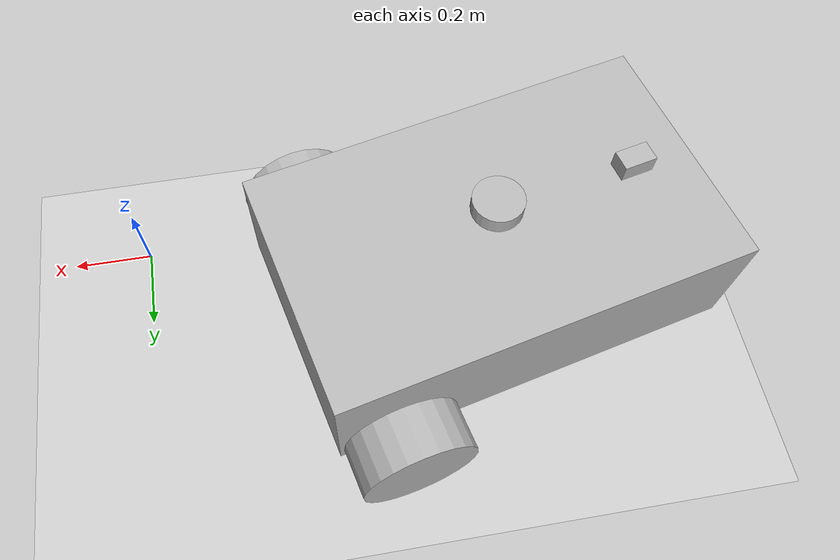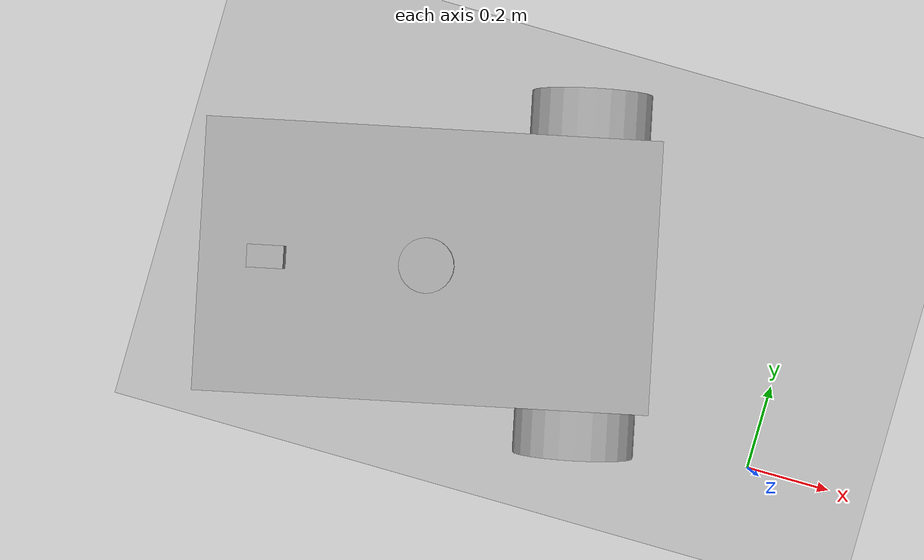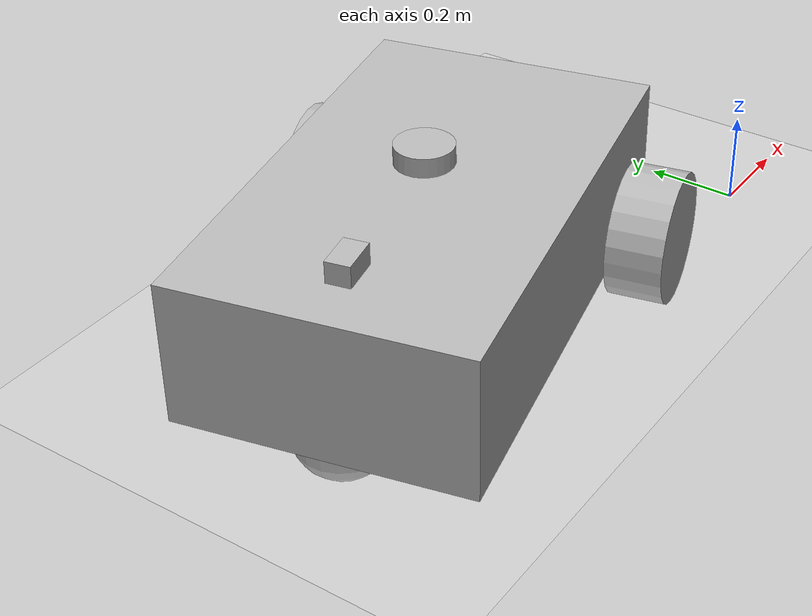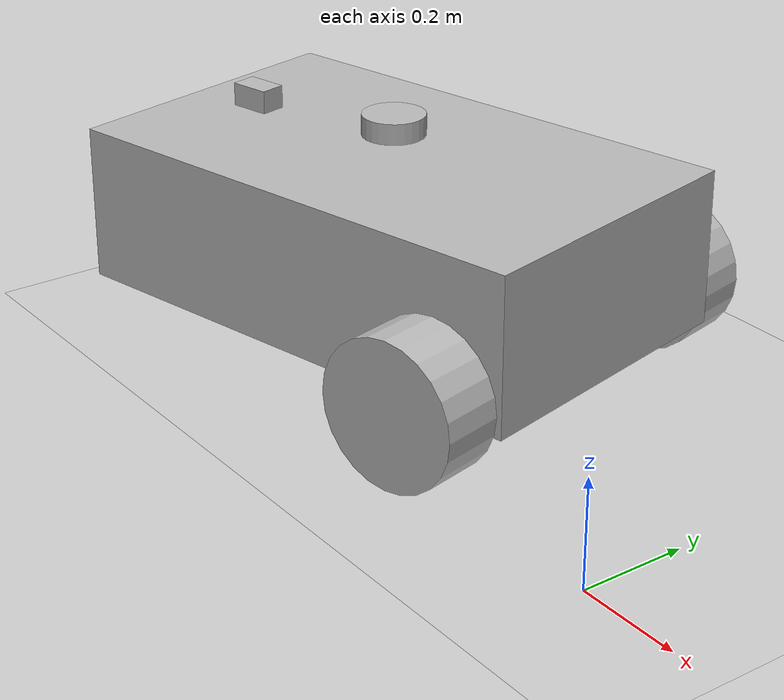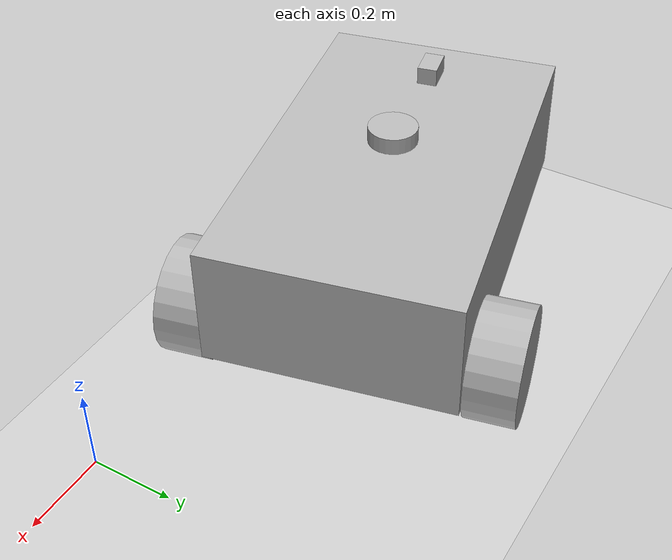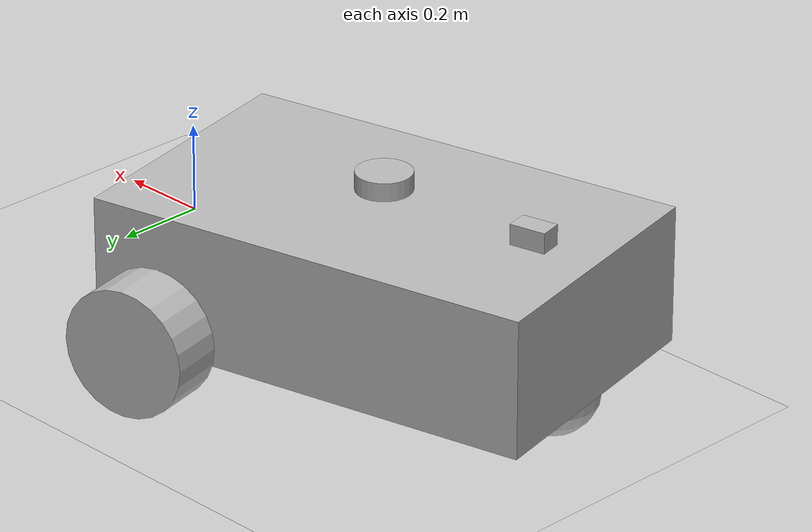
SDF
<sdf version="1.7">
 <world name="default">
  <light name="sun" type="directional">
   <pose>0 0 10 0 -0 0</pose>
   <diffuse>0.8 0.8 0.8 1</diffuse>
   <specular>0.2 0.2 0.2 1</specular>
   <attenuation>
    <range>1000</range>
    <constant>0.9</constant>
    <linear>0.01</linear>
    <quadratic>0.001</quadratic>
   </attenuation>
   <direction>-0.5 0.1 -0.9</direction>
   <spot><inner_angle>0</inner_angle><outer_angle>0</outer_angle><falloff>0</falloff></spot>
  </light>
  <model name="ground_plane">
   <static>1</static>
   <link name="link">
    <collision name="collision">
     <geometry><plane><normal>0 0 1</normal><size>100 100</size></plane></geometry>
     <surface>
      <contact><collide_bitmask>65535</collide_bitmask></contact>
      <friction><ode><mu>100</mu><mu2>50</mu2></ode></friction>
     </surface>
    </collision>
    <visual name="visual">
     <cast_shadows>0</cast_shadows>
     <geometry><plane><normal>0 0 1</normal><size>100 100</size></plane></geometry>
     <material>
      <script><uri>file://media/materials/scripts/gazebo.material</uri><name>Gazebo/Grey</name></script>
     </material>
    </visual>
   </link>
  </model>
  <gravity>0 0 -9.8</gravity>
  <magnetic_field>6e-06 2.3e-05 -4.2e-05</magnetic_field>
  <atmosphere type="adiabatic"/>
  <physics type="ode">
   <max_step_size>0.001</max_step_size>
   <real_time_factor>1</real_time_factor>
   <real_time_update_rate>1000</real_time_update_rate>
  </physics>
  <scene><ambient>0.4 0.4 0.4 1</ambient><background>0.7 0.7 0.7 1</background><shadows>1</shadows></scene>
  <audio><device>default</device></audio>
  <spherical_coordinates>
   <surface_model>EARTH_WGS84</surface_model>
   <latitude_deg>0</latitude_deg>
   <longitude_deg>0</longitude_deg>
   <elevation>0</elevation>
   <heading_deg>0</heading_deg>
  </spherical_coordinates>
  <model name="mobile_robot">
   <link name="base_footprint">
    <inertial>
     <pose>0.018224 0 0.24972 0 -0 0</pose>
     <mass>5.35</mass>
     <inertia>
      <ixx>0.111145</ixx>
      <ixy>0</ixy>
      <ixz>0.00899766</ixz>
      <iyy>0.147493</iyy>
      <iyz>0</iyz>
      <izz>0.137548</izz>
     </inertia>
    </inertial>
    <collision name="base_footprint_fixed_joint_lump__base_link_collision">
     <pose>0 0 0.25 0 -0 0</pose>
     <geometry><box><size>1 0.6 0.3</size></box></geometry>
    </collision>
    <collision name="base_footprint_fixed_joint_lump__camera_link_collision_1">
     <pose>0.35 0 0.42 0 -0 0</pose>
     <geometry><box><size>0.08 0.05 0.05</size></box></geometry>
    </collision>
    <collision name="base_footprint_fixed_joint_lump__caster_wheel_link_collision_2">
     <pose>0.4 0 0.1 0 -0 0</pose>
     <geometry><sphere><radius>0.1</radius></sphere></geometry>
     <surface><friction><ode><mu>0.01</mu><mu2>0.01</mu2></ode></friction></surface>
    </collision>
    <collision name="base_footprint_fixed_joint_lump__lidar_link_collision_3">
     <pose>0 0 0.45 0 -0 0</pose>
     <geometry><cylinder><length>0.04</length><radius>0.06</radius></cylinder></geometry>
    </collision>
    <visual name="base_footprint_fixed_joint_lump__base_link_visual">
     <pose>0 0 0.25 0 -0 0</pose>
     <geometry><box><size>1 0.6 0.3</size></box></geometry>
    </visual>
    <visual name="base_footprint_fixed_joint_lump__camera_link_visual_1">
     <pose>0.35 0 0.42 0 -0 0</pose>
     <geometry><box><size>0.08 0.05 0.05</size></box></geometry>
    </visual>
    <visual name="base_footprint_fixed_joint_lump__caster_wheel_link_visual_2">
     <pose>0.4 0 0.1 0 -0 0</pose>
     <geometry><sphere><radius>0.1</radius></sphere></geometry>
    </visual>
    <visual name="base_footprint_fixed_joint_lump__lidar_link_visual_3">
     <pose>0 0 0.45 0 -0 0</pose>
     <geometry><cylinder><length>0.04</length><radius>0.06</radius></cylinder></geometry>
    </visual>
    <sensor name="camera_sensor" type="camera">
     <always_on>1</always_on>
     <update_rate>30</update_rate>
     <visualize>1</visualize>
     <camera>
      <horizontal_fov>1.047</horizontal_fov>
      <image><width>640</width><height>480</height><format>R8G8B8</format></image>
      <clip><near>0.1</near><far>20</far></clip>
     </camera>
     <plugin name="gazebo_ros_camera" filename="libgazebo_ros_camera.so">
      <ros>
       <remapping>image_raw:=camera/image_raw</remapping>
       <remapping>camera_info:=camera/camera_info</remapping>
      </ros>
      <camera_name>camera</camera_name>
      <frame_name>camera_link</frame_name>
     </plugin>
     <pose>0.35 0 0.42 0 -0 0</pose>
    </sensor>
    <sensor name="lidar_sensor" type="ray">
     <update_rate>10</update_rate>
     <always_on>1</always_on>
     <visualize>1</visualize>
     <ray>
      <scan>
       <horizontal>
        <samples>360</samples>
        <resolution>1</resolution>
        <min_angle>-3.14</min_angle>
        <max_angle>3.14</max_angle>
       </horizontal>
       <vertical><samples>1</samples><min_angle>0</min_angle><max_angle>0</max_angle></vertical>
      </scan>
      <range><min>0.12</min><max>10</max><resolution>0.01</resolution></range>
     </ray>
     <plugin name="gazebo_ros_laser" filename="libgazebo_ros_ray_sensor.so">
      <ros><remapping>~/out:=scan</remapping></ros>
      <output_type>sensor_msgs/LaserScan</output_type>
      <frame_name>lidar_link</frame_name>
     </plugin>
     <pose>0 0 0.45 0 -0 0</pose>
    </sensor>
   </link>
   <joint name="left_wheel_joint" type="revolute">
    <pose relative_to="base_footprint">-0.35 0.36 0.14 0 -0 0</pose>
    <parent>base_footprint</parent>
    <child>left_wheel_link</child>
    <axis>
     <xyz>0 1 0</xyz>
     <limit><lower>-1e+16</lower><upper>1e+16</upper></limit>
     <dynamics><spring_reference>0</spring_reference><spring_stiffness>0</spring_stiffness></dynamics>
    </axis>
   </joint>
   <link name="left_wheel_link">
    <pose relative_to="left_wheel_joint">0 0 0 0 -0 0</pose>
    <inertial>
     <mass>1</mass>
     <inertia><ixx>0.01</ixx><ixy>0</ixy><ixz>0</ixz><iyy>0.01</iyy><iyz>0</iyz><izz>0.01</izz></inertia>
    </inertial>
    <collision name="left_wheel_link_collision">
     <pose>0 0 0 1.5708 -0 0</pose>
     <geometry><cylinder><length>0.12</length><radius>0.14</radius></cylinder></geometry>
     <surface>
      <contact><ode><kp>1e+06</kp><kd>100</kd></ode></contact>
      <friction><ode><mu>2</mu><mu2>2</mu2></ode></friction>
     </surface>
    </collision>
    <visual name="left_wheel_link_visual">
     <pose>0 0 0 1.5708 -0 0</pose>
     <geometry><cylinder><length>0.12</length><radius>0.14</radius></cylinder></geometry>
    </visual>
   </link>
   <joint name="right_wheel_joint" type="revolute">
    <pose relative_to="base_footprint">-0.35 -0.36 0.14 0 -0 0</pose>
    <parent>base_footprint</parent>
    <child>right_wheel_link</child>
    <axis>
     <xyz>0 1 0</xyz>
     <limit><lower>-1e+16</lower><upper>1e+16</upper></limit>
     <dynamics><spring_reference>0</spring_reference><spring_stiffness>0</spring_stiffness></dynamics>
    </axis>
   </joint>
   <link name="right_wheel_link">
    <pose relative_to="right_wheel_joint">0 0 0 0 -0 0</pose>
    <inertial>
     <mass>1</mass>
     <inertia><ixx>0.01</ixx><ixy>0</ixy><ixz>0</ixz><iyy>0.01</iyy><iyz>0</iyz><izz>0.01</izz></inertia>
    </inertial>
    <collision name="right_wheel_link_collision">
     <pose>0 0 0 1.5708 -0 0</pose>
     <geometry><cylinder><length>0.12</length><radius>0.14</radius></cylinder></geometry>
     <surface>
      <contact><ode><kp>1e+06</kp><kd>100</kd></ode></contact>
      <friction><ode><mu>2</mu><mu2>2</mu2></ode></friction>
     </surface>
    </collision>
    <visual name="right_wheel_link_visual">
     <pose>0 0 0 1.5708 -0 0</pose>
     <geometry><cylinder><length>0.12</length><radius>0.14</radius></cylinder></geometry>
    </visual>
   </link>
   <plugin name="diff_drive" filename="libgazebo_ros_diff_drive.so">
    <ros><remapping>cmd_vel:=cmd_vel</remapping><remapping>odom:=odom</remapping></ros>
    <update_rate>50</update_rate>
    <left_joint>left_wheel_joint</left_joint>
    <right_joint>right_wheel_joint</right_joint>
    <wheel_separation>0.72</wheel_separation>
    <wheel_diameter>0.28</wheel_diameter>
    <max_wheel_torque>50</max_wheel_torque>
    <max_wheel_acceleration>10</max_wheel_acceleration>
    <publish_odom>1</publish_odom>
    <publish_odom_tf>1</publish_odom_tf>
    <publish_wheel_tf>0</publish_wheel_tf>
    <odometry_frame>odom</odometry_frame>
    <robot_base_frame>base_link</robot_base_frame>
   </plugin>
   <static>0</static>
   <plugin name="joint_state_publisher" filename="libgazebo_ros_joint_state_publisher.so">
    <update_rate>50</update_rate>
    <joint_name>left_wheel_joint</joint_name>
    <joint_name>right_wheel_joint</joint_name>
   </plugin>
   <pose>-0.85453 0.25779 -9e-06 -0 -8e-06 -2.92029</pose>
  </model>
 </world>
</sdf>
